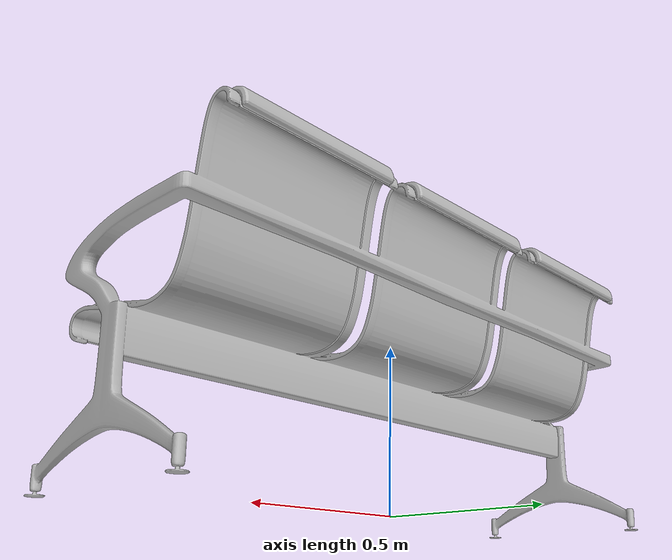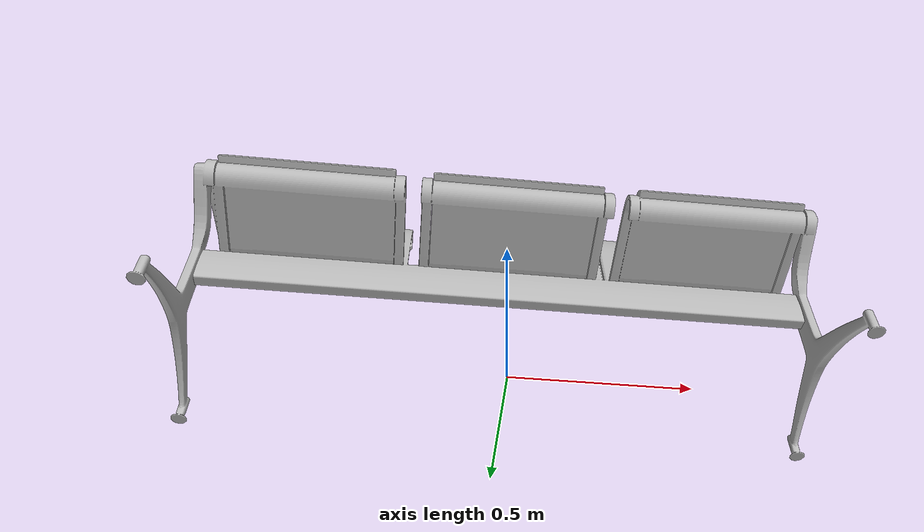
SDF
<?xml version='1.0'?>
<sdf version='1.7'>
  <model name='waiting_chair_2'>
    <link name='link_0'>
      <pose>0 0 0 0 -0 0</pose>
      <gravity>1</gravity>
      <visual name='visual'>
        <pose>0 0 0 0 -0 0</pose>
        <geometry>
          <mesh>
            <uri>model://waiting_chair_2/meshes/waiting_chair_2.dae</uri>
            <scale>1 1 1</scale>
          </mesh>
        </geometry>
        <transparency>0</transparency>
        <cast_shadows>0</cast_shadows>
      </visual>
      <collision name='collision'>
        <pose>0 0 0 0 0 0</pose>
        <geometry>
          <mesh>
            <uri>model://waiting_chair_2/meshes/waiting_chair_2.dae</uri>
            <scale>1 1 1</scale>
          </mesh>
        </geometry>
      </collision>
    </link>
    <static>1</static>
  </model>
</sdf>
